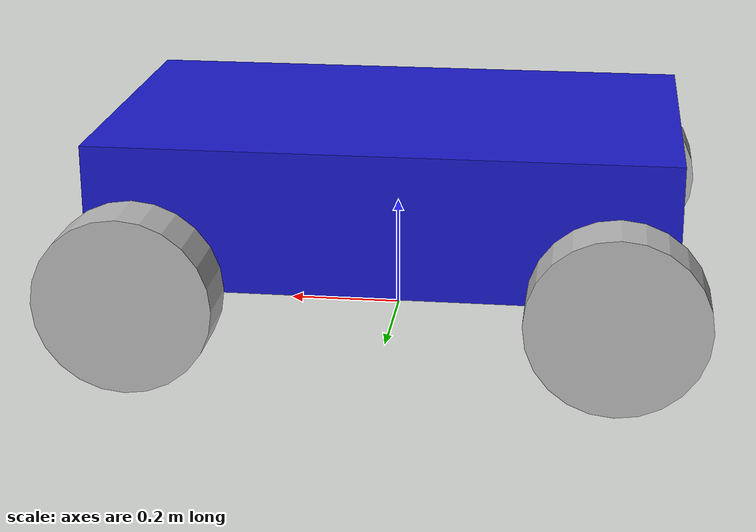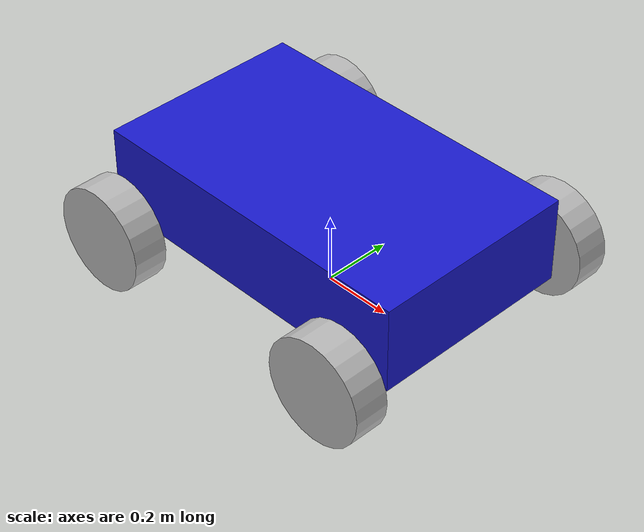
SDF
<?xml version="1.0" ?>
<sdf version="1.9">
  <model name="testRobot1">
    <static>false</static>

    <link name="chassis">
      <pose>0 0 0.25 0 0 0</pose>
      <inertial>
        <mass>4.53592</mass>
        <inertia>
          <ixx>0.1597</ixx>
          <iyy>0.4016</iyy>
          <izz>0.5142</izz>
          <ixy>0</ixy>
          <ixz>0</ixz>
          <iyz>0</iyz>
        </inertia>
      </inertial>

      <collision name="collision">
        <geometry>
          <box>
            <size>1.0 0.6 0.25</size>
          </box>
        </geometry>
      </collision>

      <visual name="visual">
        <geometry>
          <box>
            <size>1.0 0.6 0.25</size>
          </box>
        </geometry>
        <material>
          <ambient>0.1 0.1 0.8 1</ambient>
          <diffuse>0.1 0.1 0.8 1</diffuse>
        </material>
      </visual>

      <sensor name="imu_sensor" type="imu">
        <topic>/imuTest</topic>
        <always_on>true</always_on>
        <update_rate>100</update_rate>
        <visualize>true</visualize>
      </sensor>
    </link>

    <link name="left_wheel">
      <pose relative_to="chassis">0.4 0.4 -0.1 1.5708 0 0</pose>
      <inertial>
        <mass>0.5</mass>
        <inertia>
          <ixx>0.00323</ixx>
          <iyy>0.00323</iyy>
          <izz>0.00563</izz>
          <ixy>0</ixy>
          <ixz>0</ixz>
          <iyz>0</iyz>
        </inertia>
      </inertial>

      <collision name="collision">
        <geometry>
          <cylinder>
            <radius>0.15</radius>
            <length>0.1</length>
          </cylinder>
        </geometry>
        <surface>
          <friction>
            <ode>
              <mu>2.0</mu>
              <mu2>0.1</mu2>
            </ode>
          </friction>
        </surface>
      </collision>

      <visual name="visual">
        <geometry>
          <cylinder>
            <radius>0.15</radius>
            <length>0.1</length>
          </cylinder>
        </geometry>
      </visual>
    </link>

    <link name="right_wheel">
      <pose relative_to="chassis">0.4 -0.4 -0.1 1.5708 0 0</pose>
      <inertial>
        <mass>0.5</mass>
        <inertia>
          <ixx>0.00323</ixx>
          <iyy>0.00323</iyy>
          <izz>0.00563</izz>
          <ixy>0</ixy>
          <ixz>0</ixz>
          <iyz>0</iyz>
        </inertia>
      </inertial>

      <collision name="collision">
        <geometry>
          <cylinder>
            <radius>0.15</radius>
            <length>0.1</length>
          </cylinder>
        </geometry>
        <surface>
          <friction>
            <ode>
              <mu>2.0</mu>
              <mu2>0.1</mu2>
            </ode>
          </friction>
        </surface>
      </collision>

      <visual name="visual">
        <geometry>
          <cylinder>
            <radius>0.15</radius>
            <length>0.1</length>
          </cylinder>
        </geometry>
      </visual>
    </link>

    <link name="rear_left_wheel">
      <pose relative_to="chassis">-0.4 0.4 -0.1 1.5708 0 0</pose>
      <inertial>
        <mass>0.5</mass>
        <inertia>
          <ixx>0.00323</ixx>
          <iyy>0.00323</iyy>
          <izz>0.00563</izz>
          <ixy>0</ixy>
          <ixz>0</ixz>
          <iyz>0</iyz>
        </inertia>
      </inertial>

      <collision name="collision">
        <geometry>
          <cylinder>
            <radius>0.15</radius>
            <length>0.1</length>
          </cylinder>
        </geometry>
        <surface>
          <friction>
            <ode>
              <mu>2.0</mu>
              <mu2>0.1</mu2>
            </ode>
          </friction>
        </surface>
      </collision>

      <visual name="visual">
        <geometry>
          <cylinder>
            <radius>0.15</radius>
            <length>0.1</length>
          </cylinder>
        </geometry>
      </visual>
    </link>

    <link name="rear_right_wheel">
      <pose relative_to="chassis">-0.4 -0.4 -0.1 1.5708 0 0</pose>
      <inertial>
        <mass>0.5</mass>
        <inertia>
          <ixx>0.00323</ixx>
          <iyy>0.00323</iyy>
          <izz>0.00563</izz>
          <ixy>0</ixy>
          <ixz>0</ixz>
          <iyz>0</iyz>
        </inertia>
      </inertial>

      <collision name="collision">
        <geometry>
          <cylinder>
            <radius>0.15</radius>
            <length>0.1</length>
          </cylinder>
        </geometry>
        <surface>
          <friction>
            <ode>
              <mu>2.0</mu>
              <mu2>0.1</mu2>
            </ode>
          </friction>
        </surface>
      </collision>

      <visual name="visual">
        <geometry>
          <cylinder>
            <radius>0.15</radius>
            <length>0.1</length>
          </cylinder>
        </geometry>
      </visual>
    </link>

    <joint name="left_wheel_joint" type="revolute">
      <pose relative_to="chassis">0.4 0.4 -0.1 0 0 0</pose>
      <parent>chassis</parent>
      <child>left_wheel</child>
      <axis>
        <xyz>0 1 0</xyz>
        <dynamics>
          <damping>0.05</damping>
          <friction>0.01</friction>
        </dynamics>
      </axis>
    </joint>

    <joint name="right_wheel_joint" type="revolute">
      <pose relative_to="chassis">0.4 -0.4 -0.1 0 0 0</pose>
      <parent>chassis</parent>
      <child>right_wheel</child>
      <axis>
        <xyz>0 1 0</xyz>
        <dynamics>
          <damping>0.05</damping>
          <friction>0.01</friction>
        </dynamics>
      </axis>
    </joint>

    <joint name="back_left_wheel_joint" type="revolute">
      <parent>chassis</parent>
      <child>rear_left_wheel</child>
      <axis>
        <xyz>0 0 -1</xyz>
        <dynamics>
          <damping>0.05</damping>
          <friction>0.01</friction>
        </dynamics>
      </axis>
    </joint>

    <joint name="back_right_wheel_joint" type="revolute">
      <parent>chassis</parent>
      <child>rear_right_wheel</child>
      <axis>
        <xyz>0 0 -1</xyz>
        <dynamics>
          <damping>0.05</damping>
          <friction>0.01</friction>
        </dynamics>
      </axis>
    </joint>

    <plugin filename="libTankDrivePlugin"
            name="TankDrivePlugin">
      <topic>/tank_cmd</topic>
      <rpm>600</rpm>
    </plugin>
  </model>
</sdf>
